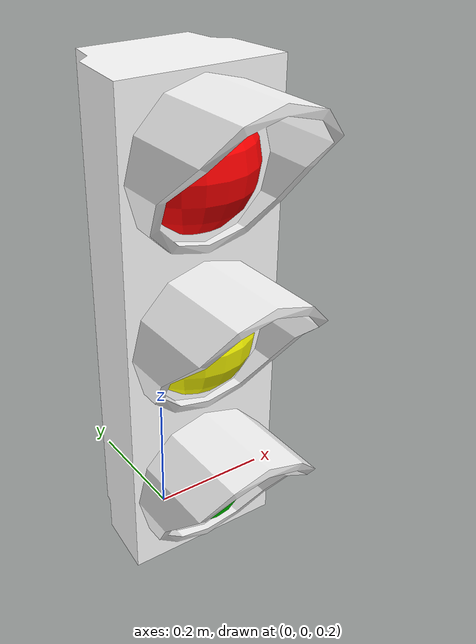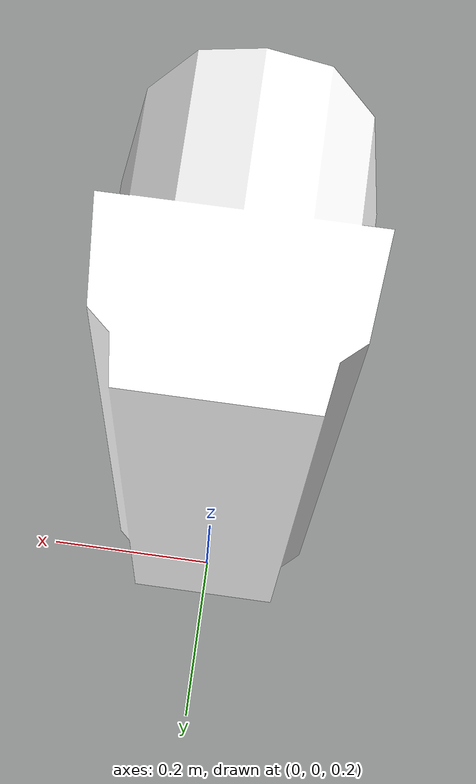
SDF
<?xml version="1.0" ?>
<sdf version="1.6">
  <model name="stop_light">

    <static>true</static>

    <!-- this pose can be overriden when including the light on another model -->
    <pose>0 0 1.0 0 0 0</pose>

    <link name="link">

      <collision name="collision">
        <geometry>
          <mesh>
            <uri>model://stop_light/meshes/stop_light.obj</uri>
            <scale>0.01 0.01 0.01</scale>
          </mesh>
        </geometry>
      </collision>

      <visual name="frame">
        <geometry>
          <mesh>
            <uri>model://stop_light/meshes/stop_light.obj</uri>
            <scale>0.01 0.01 0.01</scale>
          </mesh>
        </geometry>
        <material>
          <ambient>1 1 1 1</ambient>
          <diffuse>1 1 1 1</diffuse>
          <pbr>
            <metal>
              <albedo_map>model://stop_light/materials/textures/stop_light.png</albedo_map>
              <roughness>0.68</roughness>
              <metalness>0.0</metalness>
            </metal>
          </pbr>
        </material>
      </visual>

      <visual name="red">
        <pose>-0.001123 -0.082251 -0.147514 0 0 0</pose>
        <geometry>
          <sphere>
            <radius>0.1012</radius>
          </sphere>
        </geometry>
        <material>
          <script>
            <uri>model://stop_light/materials/scripts/</uri>
            <uri>model://stop_light/materials/textures/</uri>
            <name>StopLight/Light</name>
          </script>
          <ambient>1 0 0 1</ambient>
          <diffuse>1 0 0 1</diffuse>
          <specular>1 0 0 1</specular>
          <!-- Turn a light on by uncommenting emissive -->
        </material>
      </visual>

      <visual name="yellow">
        <pose>-0.001123 -0.082251 -0.402 0 0 0</pose>
        <geometry>
          <sphere>
            <radius>0.1012</radius>
          </sphere>
        </geometry>
        <material>
          <script>
            <uri>model://stop_light/materials/scripts/</uri>
            <uri>model://stop_light/materials/textures/</uri>
            <name>StopLight/Light</name>
          </script>
          <ambient>1 1 0 1</ambient>
          <diffuse>1 1 0 1</diffuse>
          <specular>1 1 0 1</specular>
        </material>
      </visual>

      <visual name="green">
        <pose>-0.001123 -0.082251 -0.655 0 0 0</pose>
        <geometry>
          <sphere>
            <radius>0.1012</radius>
          </sphere>
        </geometry>
        <material>
          <script>
            <uri>model://stop_light/materials/scripts/</uri>
            <uri>model://stop_light/materials/textures/</uri>
            <name>StopLight/Light</name>
          </script>
          <ambient>0 1 0 1</ambient>
          <diffuse>0 1 0 1</diffuse>
          <specular>0 1 0 1</specular>
        </material>
      </visual>

    </link>
  </model>
</sdf>
